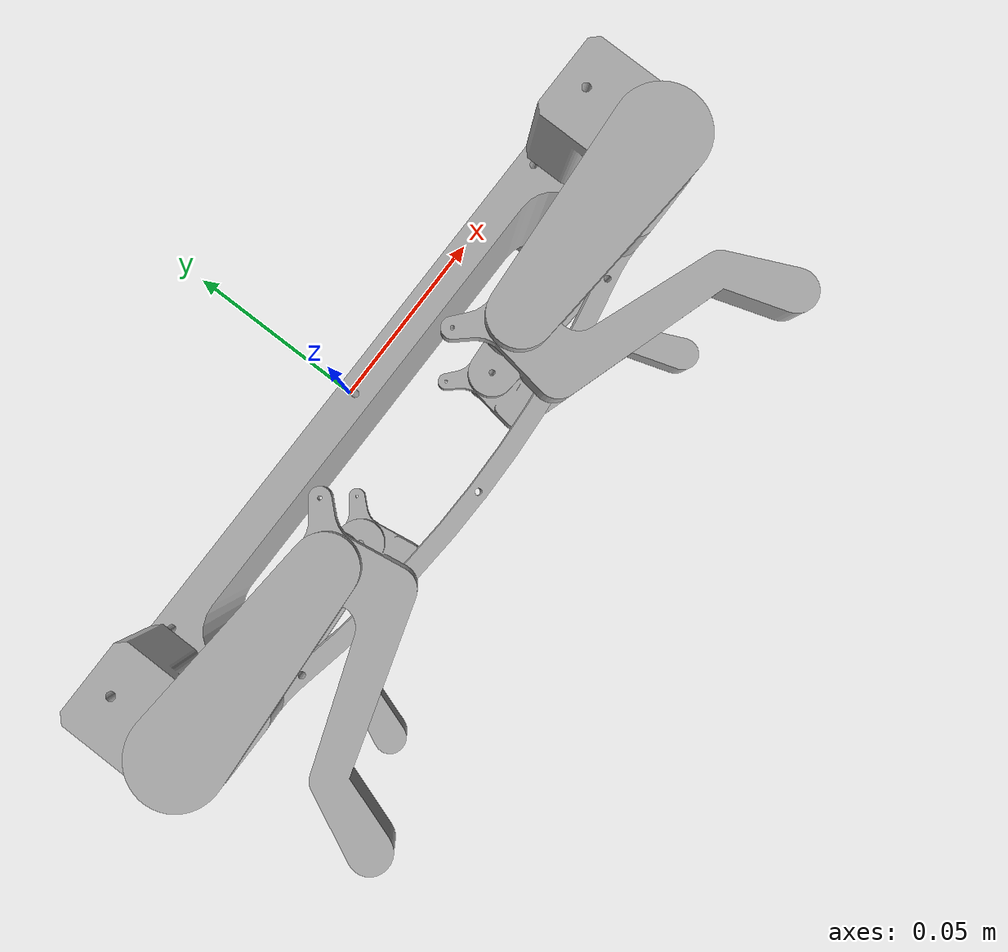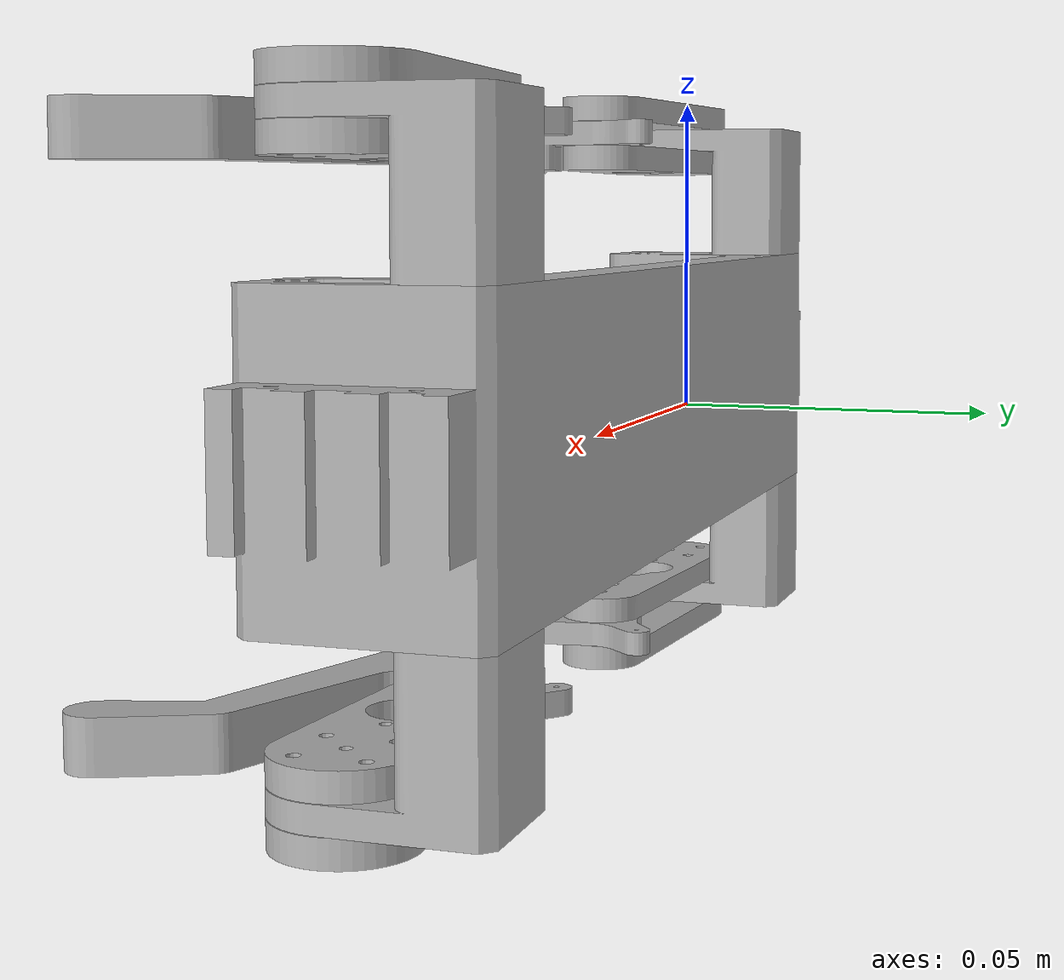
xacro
<?xml version="1.0" ?>
<robot name="forGazebo" xmlns:xacro="http://www.ros.org/wiki/xacro">

<xacro:include filename="$(find forGazebo_description)/urdf/materials.xacro" />
<xacro:include filename="$(find forGazebo_description)/urdf/forGazebo.trans" />
<xacro:include filename="$(find forGazebo_description)/urdf/forGazebo.gazebo" />
<link name="base_link">
  <inertial>
    <origin rpy="0 0 0" xyz="3.9676701090757524e-15 -0.012514724371721552 4.408544257011415e-18"/>
    <mass value="0.9692079654958036"/>
    <inertia ixx="0.000303" ixy="0.0" ixz="-0.0" iyy="0.004383" iyz="0.0" izz="0.004375"/>
  </inertial>
  <visual>
    <origin rpy="0 0 0" xyz="0 0 0"/>
    <geometry>
      <mesh filename="package://forGazebo_description/meshes/base_link.stl" scale="0.001 0.001 0.001"/>
    </geometry>
    <material name="silver"/>
  </visual>
  <collision>
    <origin rpy="0 0 0" xyz="0 0 0"/>
    <geometry>
      <mesh filename="package://forGazebo_description/meshes/base_link.stl" scale="0.001 0.001 0.001"/>
    </geometry>
  </collision>
</link>

<link name="shoulder_3_1">
  <inertial>
    <origin rpy="0 0 0" xyz="-2.5396351688300456e-14 -0.003433175878317425 -0.014597415424978458"/>
    <mass value="0.07029810724631343"/>
    <inertia ixx="9e-06" ixy="-0.0" ixz="-0.0" iyy="7e-06" iyz="-2e-06" izz="7e-06"/>
  </inertial>
  <visual>
    <origin rpy="0 0 0" xyz="0.0825 0.0064 0.0235"/>
    <geometry>
      <mesh filename="package://forGazebo_description/meshes/shoulder_3_1.stl" scale="0.001 0.001 0.001"/>
    </geometry>
    <material name="silver"/>
  </visual>
  <collision>
    <origin rpy="0 0 0" xyz="0.0825 0.0064 0.0235"/>
    <geometry>
      <mesh filename="package://forGazebo_description/meshes/shoulder_3_1.stl" scale="0.001 0.001 0.001"/>
    </geometry>
  </collision>
</link>

<link name="shoulder_4_1">
  <inertial>
    <origin rpy="0 0 0" xyz="2.348121697082206e-14 -0.0034331758783174285 0.014597415424978596"/>
    <mass value="0.07029810724631425"/>
    <inertia ixx="9e-06" ixy="0.0" ixz="-0.0" iyy="7e-06" iyz="2e-06" izz="7e-06"/>
  </inertial>
  <visual>
    <origin rpy="0 0 0" xyz="0.0825 0.0064 -0.0235"/>
    <geometry>
      <mesh filename="package://forGazebo_description/meshes/shoulder_4_1.stl" scale="0.001 0.001 0.001"/>
    </geometry>
    <material name="silver"/>
  </visual>
  <collision>
    <origin rpy="0 0 0" xyz="0.0825 0.0064 -0.0235"/>
    <geometry>
      <mesh filename="package://forGazebo_description/meshes/shoulder_4_1.stl" scale="0.001 0.001 0.001"/>
    </geometry>
  </collision>
</link>

<link name="shoulder_1_1">
  <inertial>
    <origin rpy="0 0 0" xyz="-2.363387263670802e-14 -0.003433175878317876 -0.014597415424978506"/>
    <mass value="0.07029810724631347"/>
    <inertia ixx="9e-06" ixy="-0.0" ixz="-0.0" iyy="7e-06" iyz="-2e-06" izz="7e-06"/>
  </inertial>
  <visual>
    <origin rpy="0 0 0" xyz="-0.0825 0.0064 0.0235"/>
    <geometry>
      <mesh filename="package://forGazebo_description/meshes/shoulder_1_1.stl" scale="0.001 0.001 0.001"/>
    </geometry>
    <material name="silver"/>
  </visual>
  <collision>
    <origin rpy="0 0 0" xyz="-0.0825 0.0064 0.0235"/>
    <geometry>
      <mesh filename="package://forGazebo_description/meshes/shoulder_1_1.stl" scale="0.001 0.001 0.001"/>
    </geometry>
  </collision>
</link>

<link name="shoulder_2_1">
  <inertial>
    <origin rpy="0 0 0" xyz="2.55351295663786e-14 -0.0034331758783178673 0.014597415424978562"/>
    <mass value="0.07029810724631419"/>
    <inertia ixx="9e-06" ixy="0.0" ixz="-0.0" iyy="7e-06" iyz="2e-06" izz="7e-06"/>
  </inertial>
  <visual>
    <origin rpy="0 0 0" xyz="-0.0825 0.0064 -0.0235"/>
    <geometry>
      <mesh filename="package://forGazebo_description/meshes/shoulder_2_1.stl" scale="0.001 0.001 0.001"/>
    </geometry>
    <material name="silver"/>
  </visual>
  <collision>
    <origin rpy="0 0 0" xyz="-0.0825 0.0064 -0.0235"/>
    <geometry>
      <mesh filename="package://forGazebo_description/meshes/shoulder_2_1.stl" scale="0.001 0.001 0.001"/>
    </geometry>
  </collision>
</link>

<link name="forearm_2_1">
  <inertial>
    <origin rpy="0 0 0" xyz="0.08186802896056344 -0.056734000000000034 0.028456407310489408"/>
    <mass value="0.043654651188966595"/>
    <inertia ixx="1e-06" ixy="0.0" ixz="-0.0" iyy="1.9e-05" iyz="0.0" izz="1.9e-05"/>
  </inertial>
  <visual>
    <origin rpy="0 0 0" xyz="0.143 -0.031234 -0.014813"/>
    <geometry>
      <mesh filename="package://forGazebo_description/meshes/forearm_2_1.stl" scale="0.001 0.001 0.001"/>
    </geometry>
    <material name="silver"/>
  </visual>
  <collision>
    <origin rpy="0 0 0" xyz="0.143 -0.031234 -0.014813"/>
    <geometry>
      <mesh filename="package://forGazebo_description/meshes/forearm_2_1.stl" scale="0.001 0.001 0.001"/>
    </geometry>
  </collision>
</link>

<link name="forearm_4_1">
  <inertial>
    <origin rpy="0 0 0" xyz="-0.050868028960561265 0.025499999999999582 0.029669407310489317"/>
    <mass value="0.043654651188966595"/>
    <inertia ixx="1e-06" ixy="0.0" ixz="0.0" iyy="1.9e-05" iyz="0.0" izz="1.9e-05"/>
  </inertial>
  <visual>
    <origin rpy="0 0 0" xyz="-0.112 0.051 -0.0136"/>
    <geometry>
      <mesh filename="package://forGazebo_description/meshes/forearm_4_1.stl" scale="0.001 0.001 0.001"/>
    </geometry>
    <material name="silver"/>
  </visual>
  <collision>
    <origin rpy="0 0 0" xyz="-0.112 0.051 -0.0136"/>
    <geometry>
      <mesh filename="package://forGazebo_description/meshes/forearm_4_1.stl" scale="0.001 0.001 0.001"/>
    </geometry>
  </collision>
</link>

<link name="forearm_1_1">
  <inertial>
    <origin rpy="0 0 0" xyz="-0.04886802896072601 0.025499999999999474 -0.019669407310489394"/>
    <mass value="0.04365465118896718"/>
    <inertia ixx="1e-06" ixy="0.0" ixz="-0.0" iyy="1.9e-05" iyz="0.0" izz="1.9e-05"/>
  </inertial>
  <visual>
    <origin rpy="0 0 0" xyz="-0.11 0.051 0.0236"/>
    <geometry>
      <mesh filename="package://forGazebo_description/meshes/forearm_1_1.stl" scale="0.001 0.001 0.001"/>
    </geometry>
    <material name="silver"/>
  </visual>
  <collision>
    <origin rpy="0 0 0" xyz="-0.11 0.051 0.0236"/>
    <geometry>
      <mesh filename="package://forGazebo_description/meshes/forearm_1_1.stl" scale="0.001 0.001 0.001"/>
    </geometry>
  </collision>
</link>

<link name="forearm_3_1">
  <inertial>
    <origin rpy="0 0 0" xyz="0.023868028960723722 0.025499999999999953 -0.029669407310489337"/>
    <mass value="0.04365465118896719"/>
    <inertia ixx="1e-06" ixy="0.0" ixz="0.0" iyy="1.9e-05" iyz="0.0" izz="1.9e-05"/>
  </inertial>
  <visual>
    <origin rpy="0 0 0" xyz="0.085 0.051 0.0136"/>
    <geometry>
      <mesh filename="package://forGazebo_description/meshes/forearm_3_1.stl" scale="0.001 0.001 0.001"/>
    </geometry>
    <material name="silver"/>
  </visual>
  <collision>
    <origin rpy="0 0 0" xyz="0.085 0.051 0.0136"/>
    <geometry>
      <mesh filename="package://forGazebo_description/meshes/forearm_3_1.stl" scale="0.001 0.001 0.001"/>
    </geometry>
  </collision>
</link>

<link name="leg_1_1">
  <inertial>
    <origin rpy="0 0 0" xyz="0.032821443648029636 0.003646943770378358 -0.09248769431431515"/>
    <mass value="0.050460520498688245"/>
    <inertia ixx="9e-06" ixy="1e-05" ixz="-0.0" iyy="1.6e-05" iyz="0.0" izz="2.4e-05"/>
  </inertial>
  <visual>
    <origin rpy="0 0 0" xyz="-0.017758 0.051 -0.04771"/>
    <geometry>
      <mesh filename="package://forGazebo_description/meshes/leg_1_1.stl" scale="0.001 0.001 0.001"/>
    </geometry>
    <material name="silver"/>
  </visual>
  <collision>
    <origin rpy="0 0 0" xyz="-0.017758 0.051 -0.04771"/>
    <geometry>
      <mesh filename="package://forGazebo_description/meshes/leg_1_1.stl" scale="0.001 0.001 0.001"/>
    </geometry>
  </collision>
</link>

<link name="leg_3_1">
  <inertial>
    <origin rpy="0 0 0" xyz="-0.04342644364803199 0.018224943770378844 -0.0952006943143151"/>
    <mass value="0.05046052049868823"/>
    <inertia ixx="9e-06" ixy="-1e-05" ixz="0.0" iyy="1.6e-05" iyz="0.0" izz="2.4e-05"/>
  </inertial>
  <visual>
    <origin rpy="0 0 0" xyz="0.007153 0.065578 -0.050423"/>
    <geometry>
      <mesh filename="package://forGazebo_description/meshes/leg_3_1.stl" scale="0.001 0.001 0.001"/>
    </geometry>
    <material name="silver"/>
  </visual>
  <collision>
    <origin rpy="0 0 0" xyz="0.007153 0.065578 -0.050423"/>
    <geometry>
      <mesh filename="package://forGazebo_description/meshes/leg_3_1.stl" scale="0.001 0.001 0.001"/>
    </geometry>
  </collision>
</link>

<link name="leg_4_1">
  <inertial>
    <origin rpy="0 0 0" xyz="0.0434205563519703 0.061785943770378784 0.10352169431431521"/>
    <mass value="0.05046052049868819"/>
    <inertia ixx="9e-06" ixy="-1e-05" ixz="-0.0" iyy="1.6e-05" iyz="-0.0" izz="2.4e-05"/>
  </inertial>
  <visual>
    <origin rpy="0 0 0" xyz="0.094 0.109139 0.058744"/>
    <geometry>
      <mesh filename="package://forGazebo_description/meshes/leg_4_1.stl" scale="0.001 0.001 0.001"/>
    </geometry>
    <material name="silver"/>
  </visual>
  <collision>
    <origin rpy="0 0 0" xyz="0.094 0.109139 0.058744"/>
    <geometry>
      <mesh filename="package://forGazebo_description/meshes/leg_4_1.stl" scale="0.001 0.001 0.001"/>
    </geometry>
  </collision>
</link>

<link name="leg_2_1">
  <inertial>
    <origin rpy="0 0 0" xyz="0.023579443648031866 0.03744094377037838 0.09519169431431512"/>
    <mass value="0.050460520498688245"/>
    <inertia ixx="9e-06" ixy="1e-05" ixz="0.0" iyy="1.6e-05" iyz="-0.0" izz="2.4e-05"/>
  </inertial>
  <visual>
    <origin rpy="0 0 0" xyz="-0.027 0.084794 0.050414"/>
    <geometry>
      <mesh filename="package://forGazebo_description/meshes/leg_2_1.stl" scale="0.001 0.001 0.001"/>
    </geometry>
    <material name="silver"/>
  </visual>
  <collision>
    <origin rpy="0 0 0" xyz="-0.027 0.084794 0.050414"/>
    <geometry>
      <mesh filename="package://forGazebo_description/meshes/leg_2_1.stl" scale="0.001 0.001 0.001"/>
    </geometry>
  </collision>
</link>

<link name="cover_4_1">
  <inertial>
    <origin rpy="0 0 0" xyz="0.020450807608523275 -6.938893903907228e-17 0.00033490158844180773"/>
    <mass value="0.03927176365369435"/>
    <inertia ixx="1e-06" ixy="0.0" ixz="-0.0" iyy="1.2e-05" iyz="0.0" izz="1.4e-05"/>
  </inertial>
  <visual>
    <origin rpy="0 0 0" xyz="0.0825 0.0255 -0.05105"/>
    <geometry>
      <mesh filename="package://forGazebo_description/meshes/cover_4_1.stl" scale="0.001 0.001 0.001"/>
    </geometry>
    <material name="silver"/>
  </visual>
  <collision>
    <origin rpy="0 0 0" xyz="0.0825 0.0255 -0.05105"/>
    <geometry>
      <mesh filename="package://forGazebo_description/meshes/cover_4_1.stl" scale="0.001 0.001 0.001"/>
    </geometry>
  </collision>
</link>

<link name="cover_3_1">
  <inertial>
    <origin rpy="0 0 0" xyz="0.020450807608521054 -6.245004513516506e-17 -0.0003349015884417522"/>
    <mass value="0.03927176365369435"/>
    <inertia ixx="1e-06" ixy="0.0" ixz="0.0" iyy="1.2e-05" iyz="0.0" izz="1.4e-05"/>
  </inertial>
  <visual>
    <origin rpy="0 0 0" xyz="0.0825 0.0255 0.05105"/>
    <geometry>
      <mesh filename="package://forGazebo_description/meshes/cover_3_1.stl" scale="0.001 0.001 0.001"/>
    </geometry>
    <material name="silver"/>
  </visual>
  <collision>
    <origin rpy="0 0 0" xyz="0.0825 0.0255 0.05105"/>
    <geometry>
      <mesh filename="package://forGazebo_description/meshes/cover_3_1.stl" scale="0.001 0.001 0.001"/>
    </geometry>
  </collision>
</link>

<link name="cover_1_1">
  <inertial>
    <origin rpy="0 0 0" xyz="-0.020450807608521145 -4.926614671774132e-16 0.0003349015884417522"/>
    <mass value="0.03927176365369435"/>
    <inertia ixx="1e-06" ixy="0.0" ixz="0.0" iyy="1.2e-05" iyz="-0.0" izz="1.4e-05"/>
  </inertial>
  <visual>
    <origin rpy="0 0 0" xyz="-0.0825 0.0255 -0.05105"/>
    <geometry>
      <mesh filename="package://forGazebo_description/meshes/cover_1_1.stl" scale="0.001 0.001 0.001"/>
    </geometry>
    <material name="silver"/>
  </visual>
  <collision>
    <origin rpy="0 0 0" xyz="-0.0825 0.0255 -0.05105"/>
    <geometry>
      <mesh filename="package://forGazebo_description/meshes/cover_1_1.stl" scale="0.001 0.001 0.001"/>
    </geometry>
  </collision>
</link>

<link name="cover_2_1">
  <inertial>
    <origin rpy="0 0 0" xyz="-0.0204508076085234 -4.822531263215524e-16 -0.00033490158844175916"/>
    <mass value="0.03927176365369435"/>
    <inertia ixx="1e-06" ixy="0.0" ixz="-0.0" iyy="1.2e-05" iyz="-0.0" izz="1.4e-05"/>
  </inertial>
  <visual>
    <origin rpy="0 0 0" xyz="-0.0825 0.0255 0.05105"/>
    <geometry>
      <mesh filename="package://forGazebo_description/meshes/cover_2_1.stl" scale="0.001 0.001 0.001"/>
    </geometry>
    <material name="silver"/>
  </visual>
  <collision>
    <origin rpy="0 0 0" xyz="-0.0825 0.0255 0.05105"/>
    <geometry>
      <mesh filename="package://forGazebo_description/meshes/cover_2_1.stl" scale="0.001 0.001 0.001"/>
    </geometry>
  </collision>
</link>

<joint name="Rigid1" type="fixed">
  <origin rpy="0 0 0" xyz="-0.0825 -0.0064 -0.0235"/>
  <parent link="base_link"/>
  <child link="shoulder_3_1"/>
</joint>

<joint name="Rigid2" type="fixed">
  <origin rpy="0 0 0" xyz="-0.0825 -0.0064 0.0235"/>
  <parent link="base_link"/>
  <child link="shoulder_4_1"/>
</joint>

<joint name="Rigid3" type="fixed">
  <origin rpy="0 0 0" xyz="0.0825 -0.0064 -0.0235"/>
  <parent link="base_link"/>
  <child link="shoulder_1_1"/>
</joint>

<joint name="Rigid4" type="fixed">
  <origin rpy="0 0 0" xyz="0.0825 -0.0064 0.0235"/>
  <parent link="base_link"/>
  <child link="shoulder_2_1"/>
</joint>

<joint name="Rev5" type="continuous">
  <origin rpy="0 0 0" xyz="-0.0605 0.037634 -0.008687"/>
  <parent link="shoulder_4_1"/>
  <child link="forearm_2_1"/>
  <axis xyz="-0.0 0.0 1.0"/>
</joint>

<joint name="Rev6" type="continuous">
  <origin rpy="0 0 0" xyz="0.0295 -0.0446 -0.0099"/>
  <parent link="shoulder_2_1"/>
  <child link="forearm_4_1"/>
  <axis xyz="-0.0 0.0 1.0"/>
</joint>

<joint name="Rev7" type="continuous">
  <origin rpy="0 0 0" xyz="0.0275 -0.0446 -0.0001"/>
  <parent link="shoulder_1_1"/>
  <child link="forearm_1_1"/>
  <axis xyz="0.0 -0.0 -1.0"/>
</joint>

<joint name="Rev8" type="continuous">
  <origin rpy="0 0 0" xyz="-0.0025 -0.0446 0.0099"/>
  <parent link="shoulder_3_1"/>
  <child link="forearm_3_1"/>
  <axis xyz="0.0 -0.0 -1.0"/>
</joint>

<joint name="Rev9" type="continuous">
  <origin rpy="0 0 0" xyz="-0.092242 0.0 0.07131"/>
  <parent link="forearm_1_1"/>
  <child link="leg_1_1"/>
  <axis xyz="-0.0 0.0 1.0"/>
</joint>

<joint name="Rev10" type="continuous">
  <origin rpy="0 0 0" xyz="0.077847 -0.014578 0.064023"/>
  <parent link="forearm_3_1"/>
  <child link="leg_3_1"/>
  <axis xyz="0.0 0.0 1.0"/>
</joint>

<joint name="Rev11" type="continuous">
  <origin rpy="0 0 0" xyz="0.049 -0.140373 -0.073557"/>
  <parent link="forearm_2_1"/>
  <child link="leg_4_1"/>
  <axis xyz="-0.0 -0.0 -1.0"/>
</joint>

<joint name="Rev12" type="continuous">
  <origin rpy="0 0 0" xyz="-0.085 -0.033794 -0.064014"/>
  <parent link="forearm_4_1"/>
  <child link="leg_2_1"/>
  <axis xyz="0.0 -0.0 -1.0"/>
</joint>

<joint name="Rigid13" type="fixed">
  <origin rpy="0 0 0" xyz="0.0605 -0.056734 0.036237"/>
  <parent link="forearm_2_1"/>
  <child link="cover_4_1"/>
</joint>

<joint name="Rigid14" type="fixed">
  <origin rpy="0 0 0" xyz="0.0025 0.0255 -0.03745"/>
  <parent link="forearm_3_1"/>
  <child link="cover_3_1"/>
</joint>

<joint name="Rigid15" type="fixed">
  <origin rpy="0 0 0" xyz="-0.0295 0.0255 0.03745"/>
  <parent link="forearm_4_1"/>
  <child link="cover_1_1"/>
</joint>

<joint name="Rigid16" type="fixed">
  <origin rpy="0 0 0" xyz="-0.0275 0.0255 -0.02745"/>
  <parent link="forearm_1_1"/>
  <child link="cover_2_1"/>
</joint>

</robot>

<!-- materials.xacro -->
<robot name="forGazebo" xmlns:xacro="http://www.ros.org/wiki/xacro" >

<material name="silver">
  <color rgba="0.700 0.700 0.700 1.000"/>
</material>

</robot>

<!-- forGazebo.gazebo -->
<robot name="forGazebo" xmlns:xacro="http://www.ros.org/wiki/xacro" >

<xacro:property name="body_color" value="Gazebo/Silver" />

<gazebo>
  <plugin filename="libgazebo_ros_control.so" name="control"/>
</gazebo>
<gazebo reference="base_link">
  <material>${body_color}</material>
  <mu1>0.2</mu1>
  <mu2>0.2</mu2>
  <selfCollide>true</selfCollide>
  <gravity>true</gravity>
</gazebo>

<gazebo reference="shoulder_3_1">
  <material>${body_color}</material>
  <mu1>0.2</mu1>
  <mu2>0.2</mu2>
  <selfCollide>true</selfCollide>
</gazebo>

<gazebo reference="shoulder_4_1">
  <material>${body_color}</material>
  <mu1>0.2</mu1>
  <mu2>0.2</mu2>
  <selfCollide>true</selfCollide>
</gazebo>

<gazebo reference="shoulder_1_1">
  <material>${body_color}</material>
  <mu1>0.2</mu1>
  <mu2>0.2</mu2>
  <selfCollide>true</selfCollide>
</gazebo>

<gazebo reference="shoulder_2_1">
  <material>${body_color}</material>
  <mu1>0.2</mu1>
  <mu2>0.2</mu2>
  <selfCollide>true</selfCollide>
</gazebo>

<gazebo reference="forearm_2_1">
  <material>${body_color}</material>
  <mu1>0.2</mu1>
  <mu2>0.2</mu2>
  <selfCollide>true</selfCollide>
</gazebo>

<gazebo reference="forearm_4_1">
  <material>${body_color}</material>
  <mu1>0.2</mu1>
  <mu2>0.2</mu2>
  <selfCollide>true</selfCollide>
</gazebo>

<gazebo reference="forearm_1_1">
  <material>${body_color}</material>
  <mu1>0.2</mu1>
  <mu2>0.2</mu2>
  <selfCollide>true</selfCollide>
</gazebo>

<gazebo reference="forearm_3_1">
  <material>${body_color}</material>
  <mu1>0.2</mu1>
  <mu2>0.2</mu2>
  <selfCollide>true</selfCollide>
</gazebo>

<gazebo reference="leg_1_1">
  <material>${body_color}</material>
  <mu1>0.2</mu1>
  <mu2>0.2</mu2>
  <selfCollide>true</selfCollide>
</gazebo>

<gazebo reference="leg_3_1">
  <material>${body_color}</material>
  <mu1>0.2</mu1>
  <mu2>0.2</mu2>
  <selfCollide>true</selfCollide>
</gazebo>

<gazebo reference="leg_4_1">
  <material>${body_color}</material>
  <mu1>0.2</mu1>
  <mu2>0.2</mu2>
  <selfCollide>true</selfCollide>
</gazebo>

<gazebo reference="leg_2_1">
  <material>${body_color}</material>
  <mu1>0.2</mu1>
  <mu2>0.2</mu2>
  <selfCollide>true</selfCollide>
</gazebo>

<gazebo reference="cover_4_1">
  <material>${body_color}</material>
  <mu1>0.2</mu1>
  <mu2>0.2</mu2>
  <selfCollide>true</selfCollide>
</gazebo>

<gazebo reference="cover_3_1">
  <material>${body_color}</material>
  <mu1>0.2</mu1>
  <mu2>0.2</mu2>
  <selfCollide>true</selfCollide>
</gazebo>

<gazebo reference="cover_1_1">
  <material>${body_color}</material>
  <mu1>0.2</mu1>
  <mu2>0.2</mu2>
  <selfCollide>true</selfCollide>
</gazebo>

<gazebo reference="cover_2_1">
  <material>${body_color}</material>
  <mu1>0.2</mu1>
  <mu2>0.2</mu2>
  <selfCollide>true</selfCollide>
</gazebo>

</robot>
